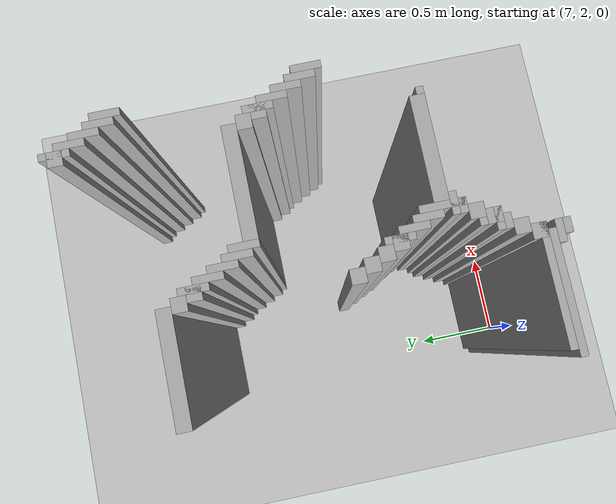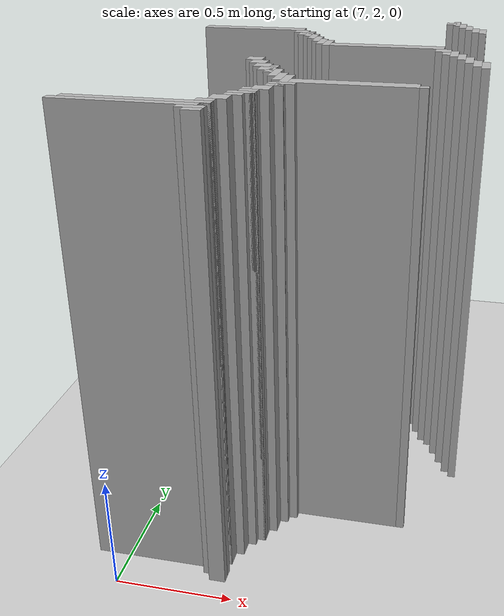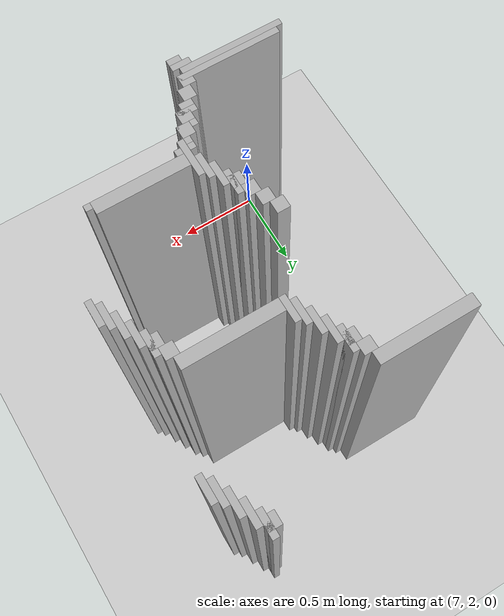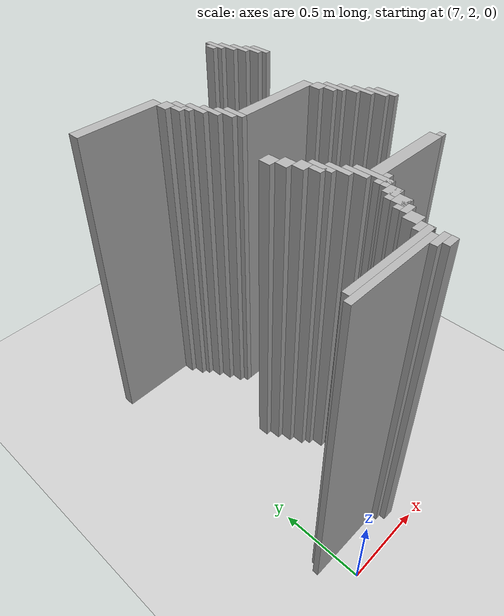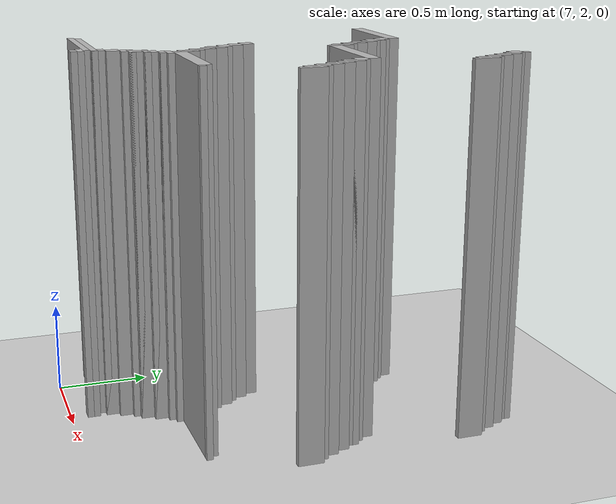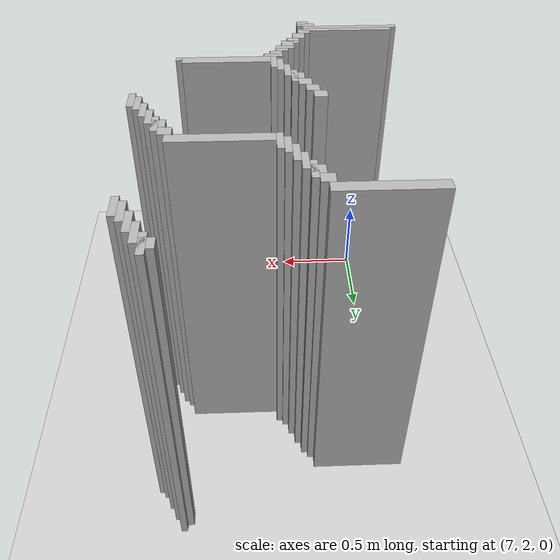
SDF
<sdf version="1.6">
 <world name="slam_world">
  <model name="ground_plane">
   <static>true</static>
   <link name="link">
    <collision name="collision">
     <geometry><plane><normal>0 0 1</normal><size>100 100</size></plane></geometry>
    </collision>
    <visual name="visual">
     <geometry><plane><normal>0 0 1</normal><size>100 100</size></plane></geometry>
     <material>
      <ambient>0.8 0.8 0.8 1</ambient>
      <diffuse>0.8 0.8 0.8 1</diffuse>
      <specular>0.8 0.8 0.8 1</specular>
     </material>
    </visual>
   </link>
  </model>
  <model name="wall_4305">
   <static>true</static>
   <pose>8.161252900232018 4.211136890951276 1.0 0 0 0</pose>
   <link name="link">
    <collision name="collision">
     <geometry><box><size>0.03480278422273782 0.13921113689095127 2.0</size></box></geometry>
    </collision>
    <visual name="visual">
     <geometry><box><size>0.03480278422273782 0.13921113689095127 2.0</size></box></geometry>
     <material><ambient>0.5 0.5 0.5 1</ambient><diffuse>0.7 0.7 0.7 1</diffuse></material>
    </visual>
   </link>
  </model>
  <model name="wall_4320">
   <static>true</static>
   <pose>8.14385150812065 4.211136890951276 1.0 0 0 0</pose>
   <link name="link">
    <collision name="collision">
     <geometry><box><size>0.06960556844547564 0.06960556844547564 2.0</size></box></geometry>
    </collision>
    <visual name="visual">
     <geometry><box><size>0.06960556844547564 0.06960556844547564 2.0</size></box></geometry>
     <material><ambient>0.5 0.5 0.5 1</ambient><diffuse>0.7 0.7 0.7 1</diffuse></material>
    </visual>
   </link>
  </model>
  <model name="wall_4335">
   <static>true</static>
   <pose>8.196055684454755 4.1415313225058 1.0 0 0 0</pose>
   <link name="link">
    <collision name="collision">
     <geometry><box><size>0.03480278422273782 0.13921113689095127 2.0</size></box></geometry>
    </collision>
    <visual name="visual">
     <geometry><box><size>0.03480278422273782 0.13921113689095127 2.0</size></box></geometry>
     <material><ambient>0.5 0.5 0.5 1</ambient><diffuse>0.7 0.7 0.7 1</diffuse></material>
    </visual>
   </link>
  </model>
  <model name="wall_4359">
   <static>true</static>
   <pose>8.230858468677495 4.071925754060325 1.0 0 0 0</pose>
   <link name="link">
    <collision name="collision">
     <geometry><box><size>0.03480278422273782 0.13921113689095127 2.0</size></box></geometry>
    </collision>
    <visual name="visual">
     <geometry><box><size>0.03480278422273782 0.13921113689095127 2.0</size></box></geometry>
     <material><ambient>0.5 0.5 0.5 1</ambient><diffuse>0.7 0.7 0.7 1</diffuse></material>
    </visual>
   </link>
  </model>
  <model name="wall_4374">
   <static>true</static>
   <pose>8.265661252900232 4.002320185614849 1.0 0 0 0</pose>
   <link name="link">
    <collision name="collision">
     <geometry><box><size>0.03480278422273782 0.13921113689095127 2.0</size></box></geometry>
    </collision>
    <visual name="visual">
     <geometry><box><size>0.03480278422273782 0.13921113689095127 2.0</size></box></geometry>
     <material><ambient>0.5 0.5 0.5 1</ambient><diffuse>0.7 0.7 0.7 1</diffuse></material>
    </visual>
   </link>
  </model>
  <model name="wall_4389">
   <static>true</static>
   <pose>8.30046403712297 3.967517401392111 1.0 0 0 0</pose>
   <link name="link">
    <collision name="collision">
     <geometry><box><size>0.03480278422273782 0.13921113689095127 2.0</size></box></geometry>
    </collision>
    <visual name="visual">
     <geometry><box><size>0.03480278422273782 0.13921113689095127 2.0</size></box></geometry>
     <material><ambient>0.5 0.5 0.5 1</ambient><diffuse>0.7 0.7 0.7 1</diffuse></material>
    </visual>
   </link>
  </model>
  <model name="wall_4434">
   <static>true</static>
   <pose>7.151972157772621 3.863109048723898 1.0 0 0 0</pose>
   <link name="link">
    <collision name="collision">
     <geometry><box><size>0.5220417633410672 0.06960556844547564 2.0</size></box></geometry>
    </collision>
    <visual name="visual">
     <geometry><box><size>0.5220417633410672 0.06960556844547564 2.0</size></box></geometry>
     <material><ambient>0.5 0.5 0.5 1</ambient><diffuse>0.7 0.7 0.7 1</diffuse></material>
    </visual>
   </link>
  </model>
  <model name="wall_4452">
   <static>true</static>
   <pose>7.412993039443156 3.793503480278422 1.0 0 0 0</pose>
   <link name="link">
    <collision name="collision">
     <geometry><box><size>0.06960556844547564 0.06960556844547564 2.0</size></box></geometry>
    </collision>
    <visual name="visual">
     <geometry><box><size>0.06960556844547564 0.06960556844547564 2.0</size></box></geometry>
     <material><ambient>0.5 0.5 0.5 1</ambient><diffuse>0.7 0.7 0.7 1</diffuse></material>
    </visual>
   </link>
  </model>
  <model name="wall_4469">
   <static>true</static>
   <pose>7.465197215777262 3.7238979118329465 1.0 0 0 0</pose>
   <link name="link">
    <collision name="collision">
     <geometry><box><size>0.03480278422273782 0.13921113689095127 2.0</size></box></geometry>
    </collision>
    <visual name="visual">
     <geometry><box><size>0.03480278422273782 0.13921113689095127 2.0</size></box></geometry>
     <material><ambient>0.5 0.5 0.5 1</ambient><diffuse>0.7 0.7 0.7 1</diffuse></material>
    </visual>
   </link>
  </model>
  <model name="wall_4486">
   <static>true</static>
   <pose>7.447795823665893 3.7238979118329465 1.0 0 0 0</pose>
   <link name="link">
    <collision name="collision">
     <geometry><box><size>0.06960556844547564 0.06960556844547564 2.0</size></box></geometry>
    </collision>
    <visual name="visual">
     <geometry><box><size>0.06960556844547564 0.06960556844547564 2.0</size></box></geometry>
     <material><ambient>0.5 0.5 0.5 1</ambient><diffuse>0.7 0.7 0.7 1</diffuse></material>
    </visual>
   </link>
  </model>
  <model name="wall_4503">
   <static>true</static>
   <pose>7.5 3.6542923433874708 1.0 0 0 0</pose>
   <link name="link">
    <collision name="collision">
     <geometry><box><size>0.03480278422273782 0.13921113689095127 2.0</size></box></geometry>
    </collision>
    <visual name="visual">
     <geometry><box><size>0.03480278422273782 0.13921113689095127 2.0</size></box></geometry>
     <material><ambient>0.5 0.5 0.5 1</ambient><diffuse>0.7 0.7 0.7 1</diffuse></material>
    </visual>
   </link>
  </model>
  <model name="wall_4527">
   <static>true</static>
   <pose>7.534802784222737 3.584686774941995 1.0 0 0 0</pose>
   <link name="link">
    <collision name="collision">
     <geometry><box><size>0.03480278422273782 0.13921113689095127 2.0</size></box></geometry>
    </collision>
    <visual name="visual">
     <geometry><box><size>0.03480278422273782 0.13921113689095127 2.0</size></box></geometry>
     <material><ambient>0.5 0.5 0.5 1</ambient><diffuse>0.7 0.7 0.7 1</diffuse></material>
    </visual>
   </link>
  </model>
  <model name="wall_4551">
   <static>true</static>
   <pose>7.569605568445476 3.51508120649652 1.0 0 0 0</pose>
   <link name="link">
    <collision name="collision">
     <geometry><box><size>0.03480278422273782 0.13921113689095127 2.0</size></box></geometry>
    </collision>
    <visual name="visual">
     <geometry><box><size>0.03480278422273782 0.13921113689095127 2.0</size></box></geometry>
     <material><ambient>0.5 0.5 0.5 1</ambient><diffuse>0.7 0.7 0.7 1</diffuse></material>
    </visual>
   </link>
  </model>
  <model name="wall_4568">
   <static>true</static>
   <pose>7.604408352668213 3.480278422273782 1.0 0 0 0</pose>
   <link name="link">
    <collision name="collision">
     <geometry><box><size>0.03480278422273782 0.13921113689095127 2.0</size></box></geometry>
    </collision>
    <visual name="visual">
     <geometry><box><size>0.03480278422273782 0.13921113689095127 2.0</size></box></geometry>
     <material><ambient>0.5 0.5 0.5 1</ambient><diffuse>0.7 0.7 0.7 1</diffuse></material>
    </visual>
   </link>
  </model>
  <model name="wall_4592">
   <static>true</static>
   <pose>7.882830626450116 3.445475638051044 1.0 0 0 0</pose>
   <link name="link">
    <collision name="collision">
     <geometry><box><size>0.5220417633410672 0.06960556844547564 2.0</size></box></geometry>
    </collision>
    <visual name="visual">
     <geometry><box><size>0.5220417633410672 0.06960556844547564 2.0</size></box></geometry>
     <material><ambient>0.5 0.5 0.5 1</ambient><diffuse>0.7 0.7 0.7 1</diffuse></material>
    </visual>
   </link>
  </model>
  <model name="wall_4612">
   <static>true</static>
   <pose>8.14385150812065 3.3758700696055683 1.0 0 0 0</pose>
   <link name="link">
    <collision name="collision">
     <geometry><box><size>0.06960556844547564 0.06960556844547564 2.0</size></box></geometry>
    </collision>
    <visual name="visual">
     <geometry><box><size>0.06960556844547564 0.06960556844547564 2.0</size></box></geometry>
     <material><ambient>0.5 0.5 0.5 1</ambient><diffuse>0.7 0.7 0.7 1</diffuse></material>
    </visual>
   </link>
  </model>
  <model name="wall_4625">
   <static>true</static>
   <pose>8.196055684454755 3.3062645011600926 1.0 0 0 0</pose>
   <link name="link">
    <collision name="collision">
     <geometry><box><size>0.03480278422273782 0.13921113689095127 2.0</size></box></geometry>
    </collision>
    <visual name="visual">
     <geometry><box><size>0.03480278422273782 0.13921113689095127 2.0</size></box></geometry>
     <material><ambient>0.5 0.5 0.5 1</ambient><diffuse>0.7 0.7 0.7 1</diffuse></material>
    </visual>
   </link>
  </model>
  <model name="wall_4638">
   <static>true</static>
   <pose>8.178654292343387 3.3062645011600926 1.0 0 0 0</pose>
   <link name="link">
    <collision name="collision">
     <geometry><box><size>0.06960556844547564 0.06960556844547564 2.0</size></box></geometry>
    </collision>
    <visual name="visual">
     <geometry><box><size>0.06960556844547564 0.06960556844547564 2.0</size></box></geometry>
     <material><ambient>0.5 0.5 0.5 1</ambient><diffuse>0.7 0.7 0.7 1</diffuse></material>
    </visual>
   </link>
  </model>
  <model name="wall_4651">
   <static>true</static>
   <pose>8.230858468677495 3.236658932714617 1.0 0 0 0</pose>
   <link name="link">
    <collision name="collision">
     <geometry><box><size>0.03480278422273782 0.13921113689095127 2.0</size></box></geometry>
    </collision>
    <visual name="visual">
     <geometry><box><size>0.03480278422273782 0.13921113689095127 2.0</size></box></geometry>
     <material><ambient>0.5 0.5 0.5 1</ambient><diffuse>0.7 0.7 0.7 1</diffuse></material>
    </visual>
   </link>
  </model>
  <model name="wall_4670">
   <static>true</static>
   <pose>8.265661252900232 3.167053364269141 1.0 0 0 0</pose>
   <link name="link">
    <collision name="collision">
     <geometry><box><size>0.03480278422273782 0.13921113689095127 2.0</size></box></geometry>
    </collision>
    <visual name="visual">
     <geometry><box><size>0.03480278422273782 0.13921113689095127 2.0</size></box></geometry>
     <material><ambient>0.5 0.5 0.5 1</ambient><diffuse>0.7 0.7 0.7 1</diffuse></material>
    </visual>
   </link>
  </model>
  <model name="wall_4683">
   <static>true</static>
   <pose>8.30046403712297 3.097447795823666 1.0 0 0 0</pose>
   <link name="link">
    <collision name="collision">
     <geometry><box><size>0.03480278422273782 0.13921113689095127 2.0</size></box></geometry>
    </collision>
    <visual name="visual">
     <geometry><box><size>0.03480278422273782 0.13921113689095127 2.0</size></box></geometry>
     <material><ambient>0.5 0.5 0.5 1</ambient><diffuse>0.7 0.7 0.7 1</diffuse></material>
    </visual>
   </link>
  </model>
  <model name="wall_4696">
   <static>true</static>
   <pose>8.335266821345707 3.062645011600928 1.0 0 0 0</pose>
   <link name="link">
    <collision name="collision">
     <geometry><box><size>0.03480278422273782 0.13921113689095127 2.0</size></box></geometry>
    </collision>
    <visual name="visual">
     <geometry><box><size>0.03480278422273782 0.13921113689095127 2.0</size></box></geometry>
     <material><ambient>0.5 0.5 0.5 1</ambient><diffuse>0.7 0.7 0.7 1</diffuse></material>
    </visual>
   </link>
  </model>
  <model name="wall_4718">
   <static>true</static>
   <pose>7.378190255220417 3.02784222737819 1.0 0 0 0</pose>
   <link name="link">
    <collision name="collision">
     <geometry><box><size>0.06960556844547564 0.06960556844547564 2.0</size></box></geometry>
    </collision>
    <visual name="visual">
     <geometry><box><size>0.06960556844547564 0.06960556844547564 2.0</size></box></geometry>
     <material><ambient>0.5 0.5 0.5 1</ambient><diffuse>0.7 0.7 0.7 1</diffuse></material>
    </visual>
   </link>
  </model>
  <model name="wall_4739">
   <static>true</static>
   <pose>7.412993039443156 2.9582366589327145 1.0 0 0 0</pose>
   <link name="link">
    <collision name="collision">
     <geometry><box><size>0.06960556844547564 0.06960556844547564 2.0</size></box></geometry>
    </collision>
    <visual name="visual">
     <geometry><box><size>0.06960556844547564 0.06960556844547564 2.0</size></box></geometry>
     <material><ambient>0.5 0.5 0.5 1</ambient><diffuse>0.7 0.7 0.7 1</diffuse></material>
    </visual>
   </link>
  </model>
  <model name="wall_4758">
   <static>true</static>
   <pose>7.447795823665893 2.8886310904872388 1.0 0 0 0</pose>
   <link name="link">
    <collision name="collision">
     <geometry><box><size>0.06960556844547564 0.06960556844547564 2.0</size></box></geometry>
    </collision>
    <visual name="visual">
     <geometry><box><size>0.06960556844547564 0.06960556844547564 2.0</size></box></geometry>
     <material><ambient>0.5 0.5 0.5 1</ambient><diffuse>0.7 0.7 0.7 1</diffuse></material>
    </visual>
   </link>
  </model>
  <model name="wall_4774">
   <static>true</static>
   <pose>7.5 2.819025522041763 1.0 0 0 0</pose>
   <link name="link">
    <collision name="collision">
     <geometry><box><size>0.03480278422273782 0.13921113689095127 2.0</size></box></geometry>
    </collision>
    <visual name="visual">
     <geometry><box><size>0.03480278422273782 0.13921113689095127 2.0</size></box></geometry>
     <material><ambient>0.5 0.5 0.5 1</ambient><diffuse>0.7 0.7 0.7 1</diffuse></material>
    </visual>
   </link>
  </model>
  <model name="wall_4790">
   <static>true</static>
   <pose>7.48259860788863 2.819025522041763 1.0 0 0 0</pose>
   <link name="link">
    <collision name="collision">
     <geometry><box><size>0.06960556844547564 0.06960556844547564 2.0</size></box></geometry>
    </collision>
    <visual name="visual">
     <geometry><box><size>0.06960556844547564 0.06960556844547564 2.0</size></box></geometry>
     <material><ambient>0.5 0.5 0.5 1</ambient><diffuse>0.7 0.7 0.7 1</diffuse></material>
    </visual>
   </link>
  </model>
  <model name="wall_4806">
   <static>true</static>
   <pose>7.534802784222737 2.7494199535962878 1.0 0 0 0</pose>
   <link name="link">
    <collision name="collision">
     <geometry><box><size>0.03480278422273782 0.13921113689095127 2.0</size></box></geometry>
    </collision>
    <visual name="visual">
     <geometry><box><size>0.03480278422273782 0.13921113689095127 2.0</size></box></geometry>
     <material><ambient>0.5 0.5 0.5 1</ambient><diffuse>0.7 0.7 0.7 1</diffuse></material>
    </visual>
   </link>
  </model>
  <model name="wall_4830">
   <static>true</static>
   <pose>7.569605568445476 2.679814385150812 1.0 0 0 0</pose>
   <link name="link">
    <collision name="collision">
     <geometry><box><size>0.03480278422273782 0.13921113689095127 2.0</size></box></geometry>
    </collision>
    <visual name="visual">
     <geometry><box><size>0.03480278422273782 0.13921113689095127 2.0</size></box></geometry>
     <material><ambient>0.5 0.5 0.5 1</ambient><diffuse>0.7 0.7 0.7 1</diffuse></material>
    </visual>
   </link>
  </model>
  <model name="wall_4846">
   <static>true</static>
   <pose>7.604408352668213 2.6102088167053363 1.0 0 0 0</pose>
   <link name="link">
    <collision name="collision">
     <geometry><box><size>0.03480278422273782 0.2088167053364269 2.0</size></box></geometry>
    </collision>
    <visual name="visual">
     <geometry><box><size>0.03480278422273782 0.2088167053364269 2.0</size></box></geometry>
     <material><ambient>0.5 0.5 0.5 1</ambient><diffuse>0.7 0.7 0.7 1</diffuse></material>
    </visual>
   </link>
  </model>
  <model name="wall_4869">
   <static>true</static>
   <pose>7.865429234338746 2.6102088167053363 1.0 0 0 0</pose>
   <link name="link">
    <collision name="collision">
     <geometry><box><size>0.4872389791183295 0.06960556844547564 2.0</size></box></geometry>
    </collision>
    <visual name="visual">
     <geometry><box><size>0.4872389791183295 0.06960556844547564 2.0</size></box></geometry>
     <material><ambient>0.5 0.5 0.5 1</ambient><diffuse>0.7 0.7 0.7 1</diffuse></material>
    </visual>
   </link>
  </model>
  <model name="wall_4882">
   <static>true</static>
   <pose>8.12645011600928 2.5928074245939676 1.0 0 0 0</pose>
   <link name="link">
    <collision name="collision">
     <geometry><box><size>0.03480278422273782 0.03480278422273782 2.0</size></box></geometry>
    </collision>
    <visual name="visual">
     <geometry><box><size>0.03480278422273782 0.03480278422273782 2.0</size></box></geometry>
     <material><ambient>0.5 0.5 0.5 1</ambient><diffuse>0.7 0.7 0.7 1</diffuse></material>
    </visual>
   </link>
  </model>
  <model name="wall_4893">
   <static>true</static>
   <pose>7.604408352668213 2.5580046403712298 1.0 0 0 0</pose>
   <link name="link">
    <collision name="collision">
     <geometry><box><size>0.10440835266821345 0.03480278422273782 2.0</size></box></geometry>
    </collision>
    <visual name="visual">
     <geometry><box><size>0.10440835266821345 0.03480278422273782 2.0</size></box></geometry>
     <material><ambient>0.5 0.5 0.5 1</ambient><diffuse>0.7 0.7 0.7 1</diffuse></material>
    </visual>
   </link>
  </model>
  <model name="wall_4904">
   <static>true</static>
   <pose>7.587006960556844 2.523201856148492 1.0 0 0 0</pose>
   <link name="link">
    <collision name="collision">
     <geometry><box><size>0.06960556844547564 0.03480278422273782 2.0</size></box></geometry>
    </collision>
    <visual name="visual">
     <geometry><box><size>0.06960556844547564 0.03480278422273782 2.0</size></box></geometry>
     <material><ambient>0.5 0.5 0.5 1</ambient><diffuse>0.7 0.7 0.7 1</diffuse></material>
    </visual>
   </link>
  </model>
  <model name="wall_4913">
   <static>true</static>
   <pose>7.552204176334106 2.470997679814385 1.0 0 0 0</pose>
   <link name="link">
    <collision name="collision">
     <geometry><box><size>0.06960556844547564 0.06960556844547564 2.0</size></box></geometry>
    </collision>
    <visual name="visual">
     <geometry><box><size>0.06960556844547564 0.06960556844547564 2.0</size></box></geometry>
     <material><ambient>0.5 0.5 0.5 1</ambient><diffuse>0.7 0.7 0.7 1</diffuse></material>
    </visual>
   </link>
  </model>
  <model name="wall_4926">
   <static>true</static>
   <pose>7.534802784222737 2.453596287703016 1.0 0 0 0</pose>
   <link name="link">
    <collision name="collision">
     <geometry><box><size>0.10440835266821345 0.03480278422273782 2.0</size></box></geometry>
    </collision>
    <visual name="visual">
     <geometry><box><size>0.10440835266821345 0.03480278422273782 2.0</size></box></geometry>
     <material><ambient>0.5 0.5 0.5 1</ambient><diffuse>0.7 0.7 0.7 1</diffuse></material>
    </visual>
   </link>
  </model>
  <model name="wall_4938">
   <static>true</static>
   <pose>7.517401392111369 2.4013921113689096 1.0 0 0 0</pose>
   <link name="link">
    <collision name="collision">
     <geometry><box><size>0.06960556844547564 0.06960556844547564 2.0</size></box></geometry>
    </collision>
    <visual name="visual">
     <geometry><box><size>0.06960556844547564 0.06960556844547564 2.0</size></box></geometry>
     <material><ambient>0.5 0.5 0.5 1</ambient><diffuse>0.7 0.7 0.7 1</diffuse></material>
    </visual>
   </link>
  </model>
  <model name="wall_4951">
   <static>true</static>
   <pose>7.5 2.3839907192575405 1.0 0 0 0</pose>
   <link name="link">
    <collision name="collision">
     <geometry><box><size>0.10440835266821345 0.03480278422273782 2.0</size></box></geometry>
    </collision>
    <visual name="visual">
     <geometry><box><size>0.10440835266821345 0.03480278422273782 2.0</size></box></geometry>
     <material><ambient>0.5 0.5 0.5 1</ambient><diffuse>0.7 0.7 0.7 1</diffuse></material>
    </visual>
   </link>
  </model>
  <model name="wall_4962">
   <static>true</static>
   <pose>7.48259860788863 2.3491879350348026 1.0 0 0 0</pose>
   <link name="link">
    <collision name="collision">
     <geometry><box><size>0.06960556844547564 0.03480278422273782 2.0</size></box></geometry>
    </collision>
    <visual name="visual">
     <geometry><box><size>0.06960556844547564 0.03480278422273782 2.0</size></box></geometry>
     <material><ambient>0.5 0.5 0.5 1</ambient><diffuse>0.7 0.7 0.7 1</diffuse></material>
    </visual>
   </link>
  </model>
  <model name="wall_4972">
   <static>true</static>
   <pose>7.447795823665893 2.296983758700696 1.0 0 0 0</pose>
   <link name="link">
    <collision name="collision">
     <geometry><box><size>0.06960556844547564 0.06960556844547564 2.0</size></box></geometry>
    </collision>
    <visual name="visual">
     <geometry><box><size>0.06960556844547564 0.06960556844547564 2.0</size></box></geometry>
     <material><ambient>0.5 0.5 0.5 1</ambient><diffuse>0.7 0.7 0.7 1</diffuse></material>
    </visual>
   </link>
  </model>
  <model name="wall_4985">
   <static>true</static>
   <pose>7.412993039443156 2.2273781902552203 1.0 0 0 0</pose>
   <link name="link">
    <collision name="collision">
     <geometry><box><size>0.06960556844547564 0.06960556844547564 2.0</size></box></geometry>
    </collision>
    <visual name="visual">
     <geometry><box><size>0.06960556844547564 0.06960556844547564 2.0</size></box></geometry>
     <material><ambient>0.5 0.5 0.5 1</ambient><diffuse>0.7 0.7 0.7 1</diffuse></material>
    </visual>
   </link>
  </model>
  <model name="wall_4998">
   <static>true</static>
   <pose>7.16937354988399 2.2099767981438516 1.0 0 0 0</pose>
   <link name="link">
    <collision name="collision">
     <geometry><box><size>0.5568445475638051 0.03480278422273782 2.0</size></box></geometry>
    </collision>
    <visual name="visual">
     <geometry><box><size>0.5568445475638051 0.03480278422273782 2.0</size></box></geometry>
     <material><ambient>0.5 0.5 0.5 1</ambient><diffuse>0.7 0.7 0.7 1</diffuse></material>
    </visual>
   </link>
  </model>
  <model name="wall_5009">
   <static>true</static>
   <pose>7.134570765661253 2.1751740139211138 1.0 0 0 0</pose>
   <link name="link">
    <collision name="collision">
     <geometry><box><size>0.5568445475638051 0.03480278422273782 2.0</size></box></geometry>
    </collision>
    <visual name="visual">
     <geometry><box><size>0.5568445475638051 0.03480278422273782 2.0</size></box></geometry>
     <material><ambient>0.5 0.5 0.5 1</ambient><diffuse>0.7 0.7 0.7 1</diffuse></material>
    </visual>
   </link>
  </model>
  <model name="wall_5023">
   <static>true</static>
   <pose>7.395591647331786 2.140371229698376 1.0 0 0 0</pose>
   <link name="link">
    <collision name="collision">
     <geometry><box><size>0.10440835266821345 0.03480278422273782 2.0</size></box></geometry>
    </collision>
    <visual name="visual">
     <geometry><box><size>0.10440835266821345 0.03480278422273782 2.0</size></box></geometry>
     <material><ambient>0.5 0.5 0.5 1</ambient><diffuse>0.7 0.7 0.7 1</diffuse></material>
    </visual>
   </link>
  </model>
  <model name="wall_5038">
   <static>true</static>
   <pose>7.412993039443156 2.105568445475638 1.0 0 0 0</pose>
   <link name="link">
    <collision name="collision">
     <geometry><box><size>0.06960556844547564 0.03480278422273782 2.0</size></box></geometry>
    </collision>
    <visual name="visual">
     <geometry><box><size>0.06960556844547564 0.03480278422273782 2.0</size></box></geometry>
     <material><ambient>0.5 0.5 0.5 1</ambient><diffuse>0.7 0.7 0.7 1</diffuse></material>
    </visual>
   </link>
  </model>
 </world>
</sdf>
